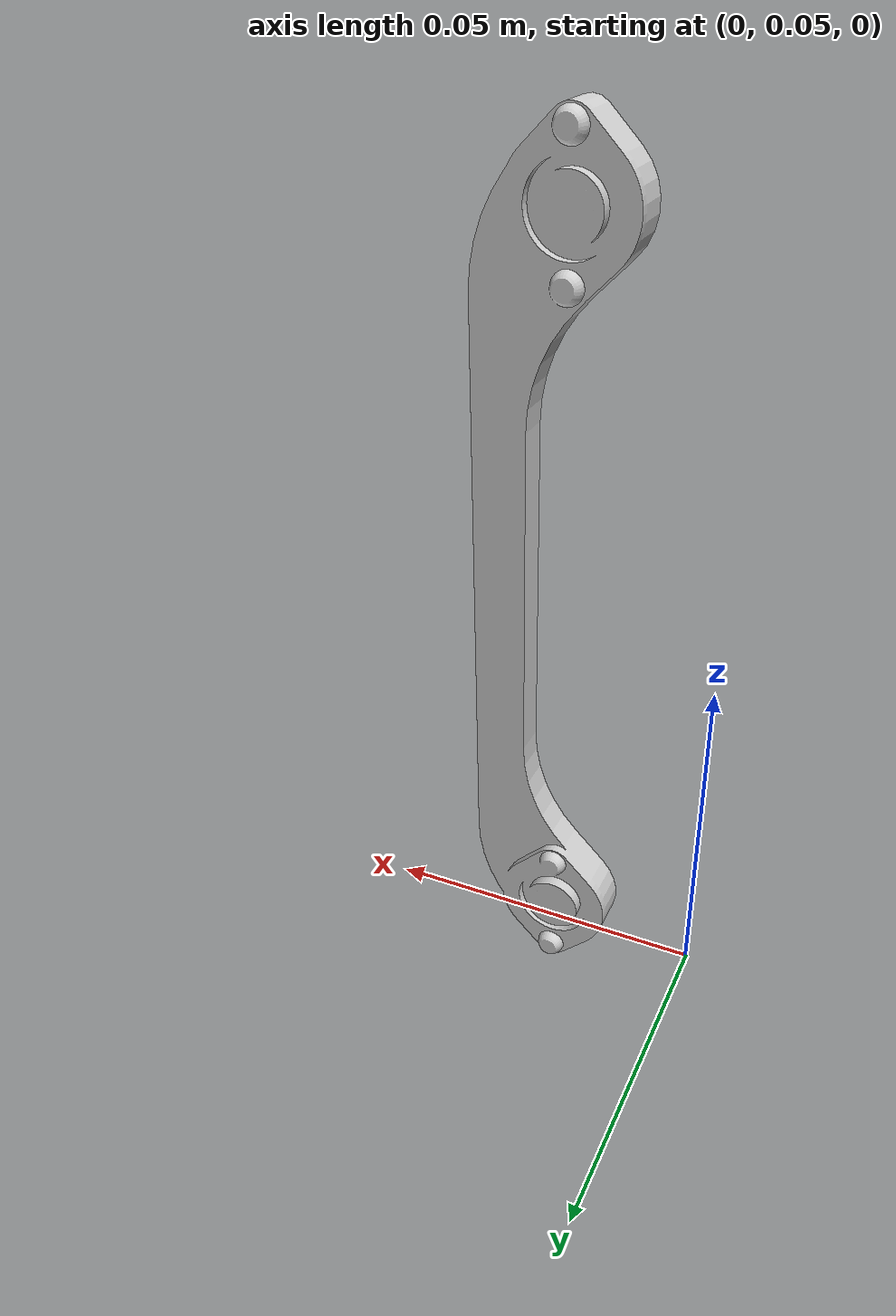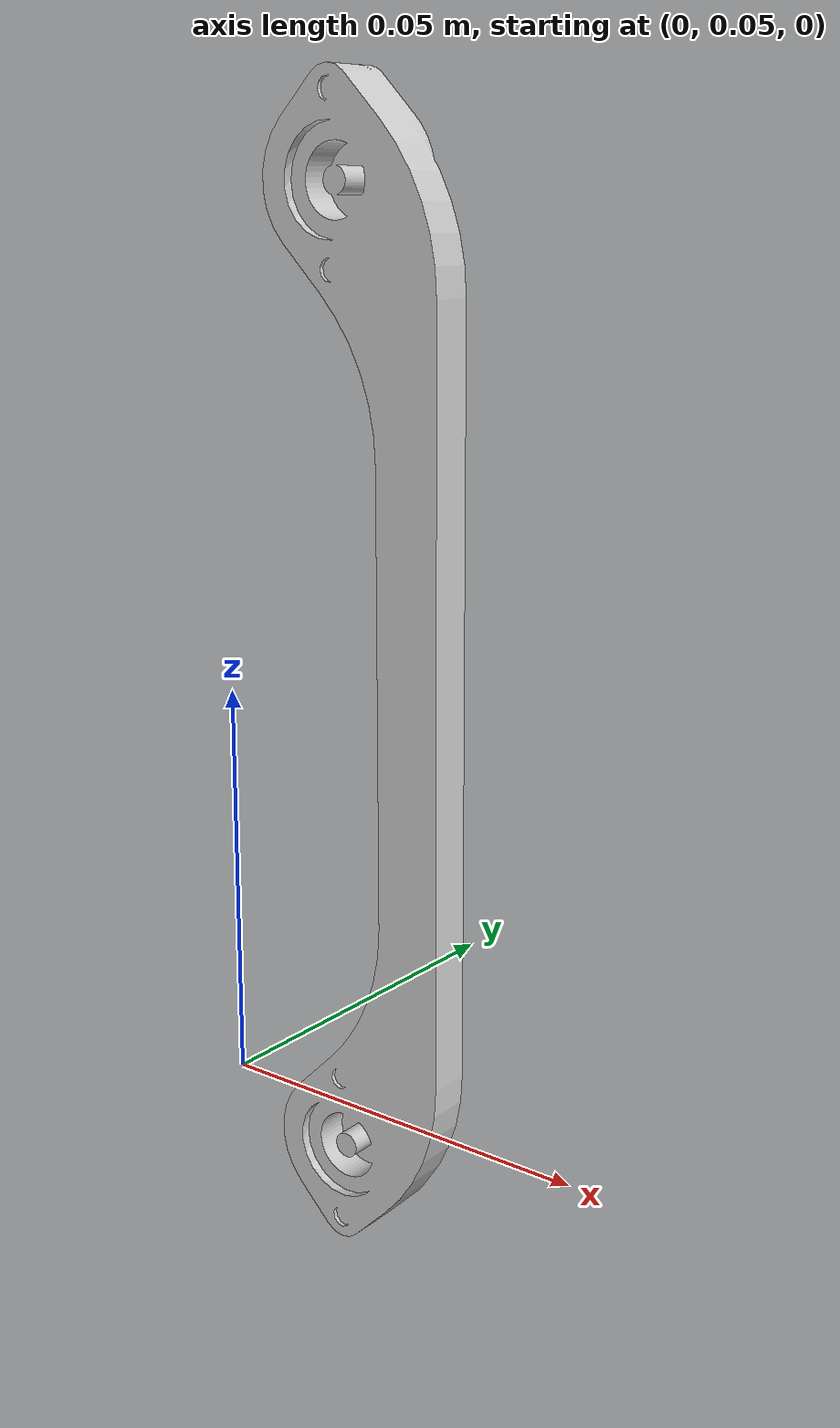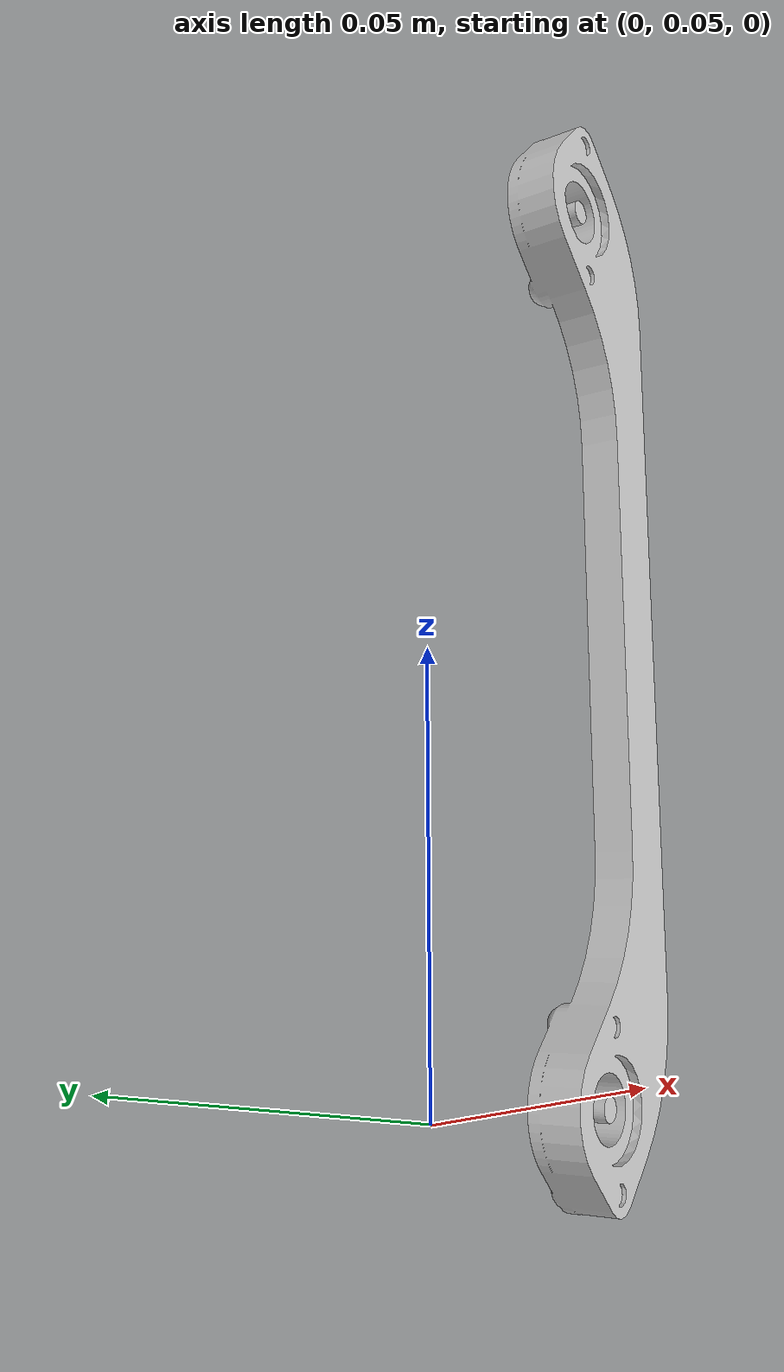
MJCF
<mujoco model="WP_Link">
  <default>
    <default class="visual">
      <geom group="2" type="mesh" contype="0" conaffinity="0"/>
    </default>
    <default class="collision">
      <geom group="3" type="mesh"/>
    </default>
  </default>
  <asset>
    <material name="None" specular="0.8000000000000002" shininess="0.5" rgba="0.8 0.8 0.8 1"/>
    <mesh file="WP_Link.obj"/>
  </asset>
  <worldbody>
    <body name="WP_Link">
      <geom material="None" mesh="WP_Link" class="visual"/>
      <geom mesh="WP_Link" class="collision"/>
    </body>
  </worldbody>
</mujoco>
